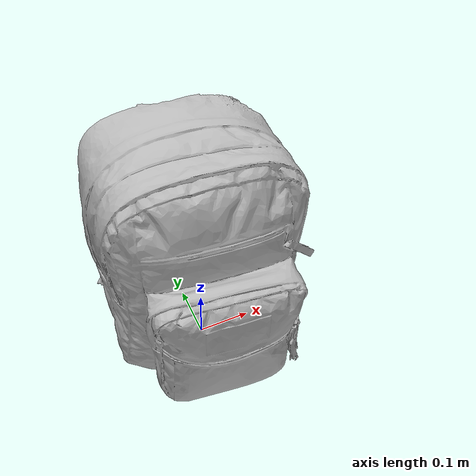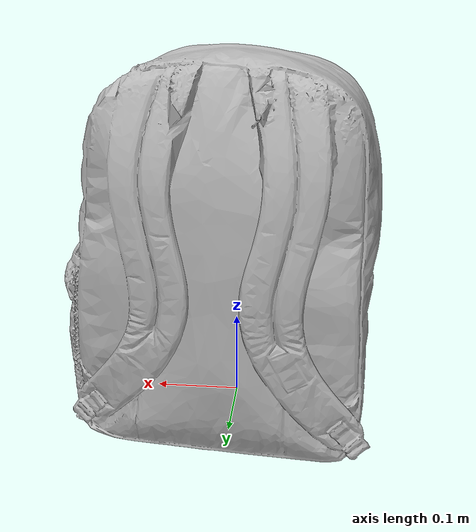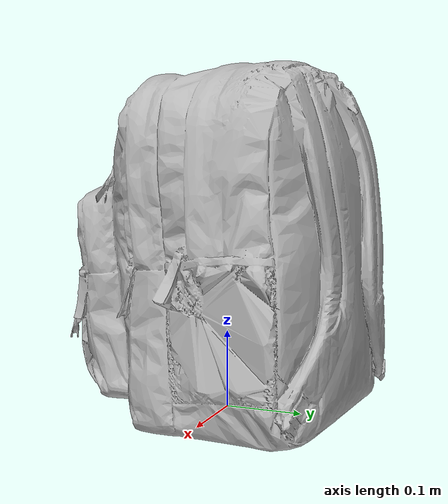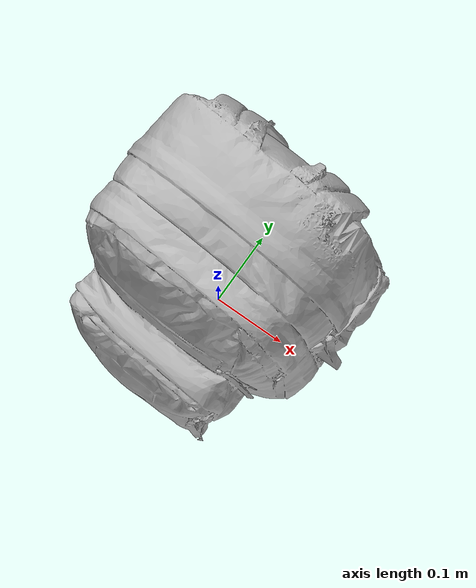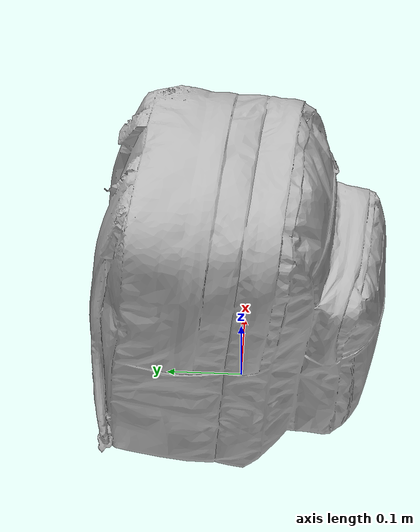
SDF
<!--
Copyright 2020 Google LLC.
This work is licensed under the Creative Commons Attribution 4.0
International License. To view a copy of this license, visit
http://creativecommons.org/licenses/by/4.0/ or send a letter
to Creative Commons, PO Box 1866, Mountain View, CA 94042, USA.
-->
<?xml version="1.0" ?>
<sdf version="1.6">
    <model name="Jansport_School_Backpack_Blue_Streak">
        <link name="link_0">
            <visual name="visual">
                <geometry>
                    <mesh>
                        <uri>meshes/model.obj</uri>
                    </mesh>
                </geometry>
            </visual>
            <collision name="collision_0">
                <geometry>
                    <mesh>
                        <uri>meshes/model.obj</uri>
                    </mesh>
                </geometry>
            </collision>
        </link>
    </model>
</sdf>
